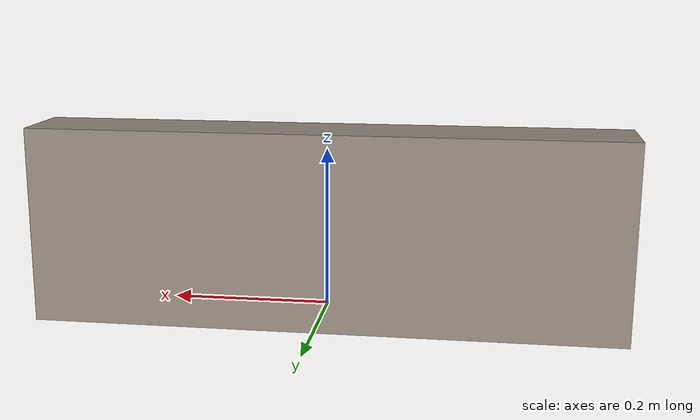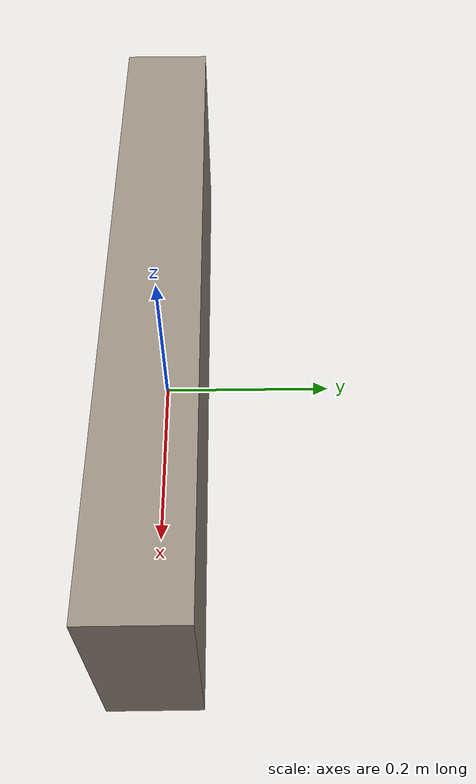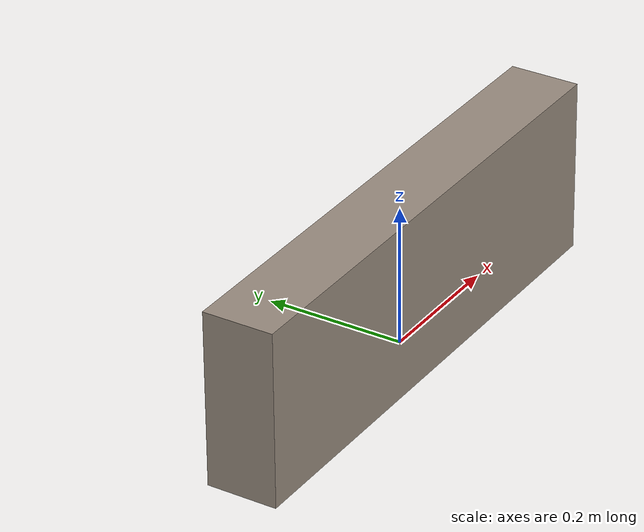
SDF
<sdf version="1.6">
    <model name="wall1">
        <allow_auto_disable>true</allow_auto_disable>
        <link name="link_1">
            <kinematic>1</kinematic>
            <pose>0 0 0.1 0 0 0 0</pose>
            <inertial>
                <pose>0 0 -0.15 0 0 0</pose>
                <inertia>
                    <ixx>0.00541667</ixx>
                    <iyy>0.05208333</iyy>
                    <izz>0.04708333</izz>
                </inertia>
                <mass>1</mass>
            </inertial>
            <visual name="visual">
                <geometry>
                    <box>
                        <size>0.75 0.1 0.25</size>
                    </box>
                </geometry>
                <material>
                    <ambient>0.6 0.55 0.5 1.0</ambient>
                    <diffuse>0.6 0.55 0.5 1.0</diffuse>
                </material>
            </visual>
            <collision name="collision1">
                <geometry>
                    <box>
                        <size>0.75 0.1 0.25</size>
                    </box>
                </geometry>
                <surface>
                    <friction>
                        <ode>
                            <mu>1.0</mu>
                            <mu2>1.0</mu2>
                        </ode>
                    </friction>
                    <contact>
                        <ode>
                            <kp>1e15</kp>
                            <kd>1e12</kd>
                        </ode>
                    </contact>
                </surface>
            </collision>
        </link>
    </model>
</sdf>
